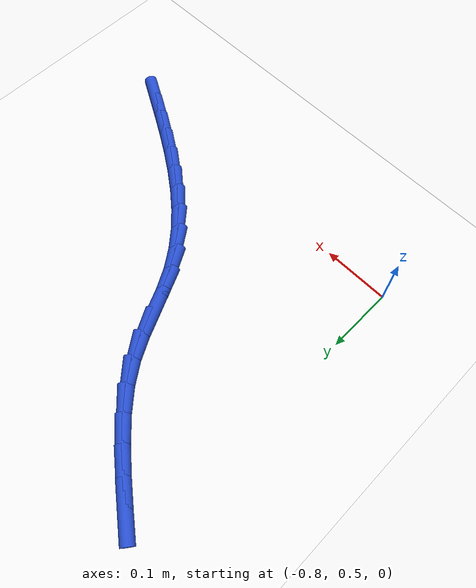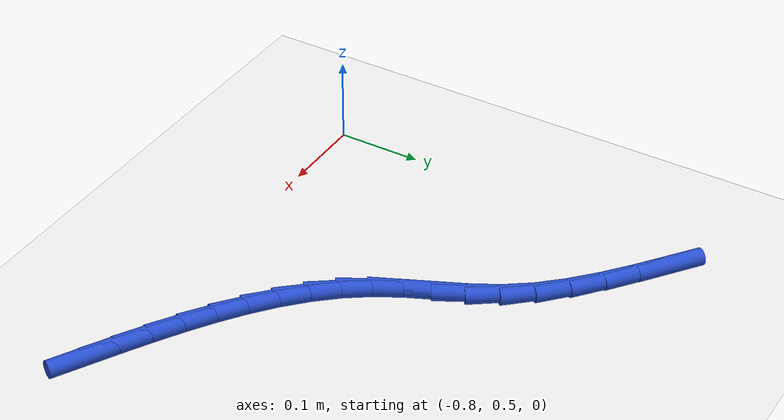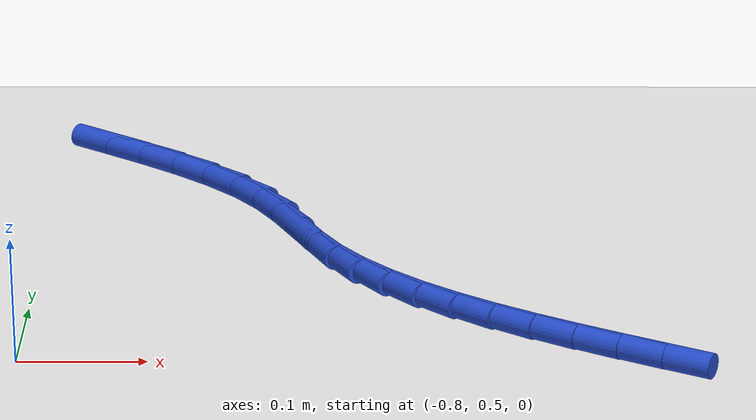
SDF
<sdf version="1.6">
 <world name="default">
  <model name="ground_plane">
   <static>1</static>
   <link name="link">
    <collision name="collision">
     <geometry><plane><normal>0 0 1</normal><size>100 100</size></plane></geometry>
     <surface><friction><ode><mu>100</mu><mu2>50</mu2></ode></friction></surface>
    </collision>
    <visual name="visual">
     <cast_shadows>0</cast_shadows>
     <geometry><plane><normal>0 0 1</normal><size>100 100</size></plane></geometry>
     <material>
      <script><uri>file://media/materials/scripts/gazebo.material</uri><name>Gazebo/WhiteGlow</name></script>
     </material>
    </visual>
   </link>
  </model>
  <model name="line">
   <link name="link_18">
    <pose>-0.31032560848760915 0.49029500216168387 0.01 0 1.57 -0.5091046381326408</pose>
    <collision name="collision">
     <geometry><cylinder><radius>0.01</radius><length>0.08</length></cylinder></geometry>
    </collision>
    <visual name="visual">
     <material>
      <script><name>Gazebo/Blue</name><uri>file://media/materials/scripts/gazebo.material</uri></script>
     </material>
     <geometry><cylinder><radius>0.01</radius><length>0.08</length></cylinder></geometry>
    </visual>
   </link>
   <link name="link_19">
    <pose>-0.3429527251360547 0.5085069300871311 0.01 0 1.57 -0.522336389650863</pose>
    <collision name="collision">
     <geometry><cylinder><radius>0.01</radius><length>0.08</length></cylinder></geometry>
    </collision>
    <visual name="visual">
     <material>
      <script><name>Gazebo/Blue</name><uri>file://media/materials/scripts/gazebo.material</uri></script>
     </material>
     <geometry><cylinder><radius>0.01</radius><length>0.08</length></cylinder></geometry>
    </visual>
   </link>
   <link name="link_20">
    <pose>-0.37517970404151657 0.5270589806637608 0.01 0 1.57 -0.5461047270690569</pose>
    <collision name="collision">
     <geometry><cylinder><radius>0.01</radius><length>0.08</length></cylinder></geometry>
    </collision>
    <visual name="visual">
     <material>
      <script><name>Gazebo/Blue</name><uri>file://media/materials/scripts/gazebo.material</uri></script>
     </material>
     <geometry><cylinder><radius>0.01</radius><length>0.08</length></cylinder></geometry>
    </visual>
   </link>
   <link name="link_21">
    <pose>-0.4066532832284995 0.5461873145926399 0.01 0 1.57 -0.5810437528685014</pose>
    <collision name="collision">
     <geometry><cylinder><radius>0.01</radius><length>0.08</length></cylinder></geometry>
    </collision>
    <visual name="visual">
     <material>
      <script><name>Gazebo/Blue</name><uri>file://media/materials/scripts/gazebo.material</uri></script>
     </material>
     <geometry><cylinder><radius>0.01</radius><length>0.08</length></cylinder></geometry>
    </visual>
   </link>
   <link name="link_22">
    <pose>-0.43702020072150877 0.5661280925748349 0.01 0 1.57 -0.6280291603514226</pose>
    <collision name="collision">
     <geometry><cylinder><radius>0.01</radius><length>0.08</length></cylinder></geometry>
    </collision>
    <visual name="visual">
     <material>
      <script><name>Gazebo/Blue</name><uri>file://media/materials/scripts/gazebo.material</uri></script>
     </material>
     <geometry><cylinder><radius>0.01</radius><length>0.08</length></cylinder></geometry>
    </visual>
   </link>
   <link name="link_23">
    <pose>-0.4659271945450489 0.5871174753114121 0.01 0 1.57 -0.6880792725380012</pose>
    <collision name="collision">
     <geometry><cylinder><radius>0.01</radius><length>0.08</length></cylinder></geometry>
    </collision>
    <visual name="visual">
     <material>
      <script><name>Gazebo/Blue</name><uri>file://media/materials/scripts/gazebo.material</uri></script>
     </material>
     <geometry><cylinder><radius>0.01</radius><length>0.08</length></cylinder></geometry>
    </visual>
   </link>
   <link name="link_24">
    <pose>-0.49302100272362503 0.6093916235034388 0.01 0 1.57 -0.7621628214494885</pose>
    <collision name="collision">
     <geometry><cylinder><radius>0.01</radius><length>0.08</length></cylinder></geometry>
    </collision>
    <visual name="visual">
     <material>
      <script><name>Gazebo/Blue</name><uri>file://media/materials/scripts/gazebo.material</uri></script>
     </material>
     <geometry><cylinder><radius>0.01</radius><length>0.08</length></cylinder></geometry>
    </visual>
   </link>
   <link name="link_25">
    <pose>-0.517948363281742 0.6331866978519807 0.01 0 1.57 -0.8508699777177273</pose>
    <collision name="collision">
     <geometry><cylinder><radius>0.01</radius><length>0.08</length></cylinder></geometry>
    </collision>
    <visual name="visual">
     <material>
      <script><name>Gazebo/Blue</name><uri>file://media/materials/scripts/gazebo.material</uri></script>
     </material>
     <geometry><cylinder><radius>0.01</radius><length>0.08</length></cylinder></geometry>
    </visual>
   </link>
   <link name="link_26">
    <pose>-0.5403560142439046 0.6587388590581049 0.01 0 1.57 -0.9539351848461627</pose>
    <collision name="collision">
     <geometry><cylinder><radius>0.01</radius><length>0.08</length></cylinder></geometry>
    </collision>
    <visual name="visual">
     <material>
      <script><name>Gazebo/Blue</name><uri>file://media/materials/scripts/gazebo.material</uri></script>
     </material>
     <geometry><cylinder><radius>0.01</radius><length>0.08</length></cylinder></geometry>
    </visual>
   </link>
   <link name="link_27">
    <pose>-0.559890693634618 0.686284267822878 0.01 0 1.57 -1.0650247604263254</pose>
    <collision name="collision">
     <geometry><cylinder><radius>0.01</radius><length>0.08</length></cylinder></geometry>
    </collision>
    <visual name="visual">
     <material>
      <script><name>Gazebo/Blue</name><uri>file://media/materials/scripts/gazebo.material</uri></script>
     </material>
     <geometry><cylinder><radius>0.01</radius><length>0.08</length></cylinder></geometry>
    </visual>
   </link>
   <link name="link_28">
    <pose>-0.5763384373440941 0.7159829666899207 0.01 0 1.57 -1.1340277420790987</pose>
    <collision name="collision">
     <geometry><cylinder><radius>0.01</radius><length>0.08</length></cylinder></geometry>
    </collision>
    <visual name="visual">
     <material>
      <script><name>Gazebo/Blue</name><uri>file://media/materials/scripts/gazebo.material</uri></script>
     </material>
     <geometry><cylinder><radius>0.01</radius><length>0.08</length></cylinder></geometry>
    </visual>
   </link>
   <link name="link_29">
    <pose>-0.5909175316045487 0.747212356943557 0.01 0 1.57 -1.1344712018497798</pose>
    <collision name="collision">
     <geometry><cylinder><radius>0.01</radius><length>0.08</length></cylinder></geometry>
    </collision>
    <visual name="visual">
     <material>
      <script><name>Gazebo/Blue</name><uri>file://media/materials/scripts/gazebo.material</uri></script>
     </material>
     <geometry><cylinder><radius>0.01</radius><length>0.08</length></cylinder></geometry>
    </visual>
   </link>
   <link name="link_30">
    <pose>-0.6056885783829699 0.7788895634568915 0.01 0 1.57 -1.0688330388672136</pose>
    <collision name="collision">
     <geometry><cylinder><radius>0.01</radius><length>0.08</length></cylinder></geometry>
    </collision>
    <visual name="visual">
     <material>
      <script><name>Gazebo/Blue</name><uri>file://media/materials/scripts/gazebo.material</uri></script>
     </material>
     <geometry><cylinder><radius>0.01</radius><length>0.08</length></cylinder></geometry>
    </visual>
   </link>
   <link name="link_31">
    <pose>-0.6227229647555037 0.8099258176700388 0.01 0 1.57 -0.9468083116000312</pose>
    <collision name="collision">
     <geometry><cylinder><radius>0.01</radius><length>0.08</length></cylinder></geometry>
    </collision>
    <visual name="visual">
     <material>
      <script><name>Gazebo/Blue</name><uri>file://media/materials/scripts/gazebo.material</uri></script>
     </material>
     <geometry><cylinder><radius>0.01</radius><length>0.08</length></cylinder></geometry>
    </visual>
   </link>
   <link name="link_32">
    <pose>-0.6438899885591162 0.8393266342364513 0.01 0 1.57 -0.8292757306958182</pose>
    <collision name="collision">
     <geometry><cylinder><radius>0.01</radius><length>0.08</length></cylinder></geometry>
    </collision>
    <visual name="visual">
     <material>
      <script><name>Gazebo/Blue</name><uri>file://media/materials/scripts/gazebo.material</uri></script>
     </material>
     <geometry><cylinder><radius>0.01</radius><length>0.08</length></cylinder></geometry>
    </visual>
   </link>
   <link name="link_33">
    <pose>-0.6692023024793812 0.8669637316292895 0.01 0 1.57 -0.7440916666252301</pose>
    <collision name="collision">
     <geometry><cylinder><radius>0.01</radius><length>0.08</length></cylinder></geometry>
    </collision>
    <visual name="visual">
     <material>
      <script><name>Gazebo/Blue</name><uri>file://media/materials/scripts/gazebo.material</uri></script>
     </material>
     <geometry><cylinder><radius>0.01</radius><length>0.08</length></cylinder></geometry>
    </visual>
   </link>
   <link name="link_34">
    <pose>-0.6976735183635517 0.893174923304674 0.01 0 1.57 -0.6869666223439104</pose>
    <collision name="collision">
     <geometry><cylinder><radius>0.01</radius><length>0.08</length></cylinder></geometry>
    </collision>
    <visual name="visual">
     <material>
      <script><name>Gazebo/Blue</name><uri>file://media/materials/scripts/gazebo.material</uri></script>
     </material>
     <geometry><cylinder><radius>0.01</radius><length>0.08</length></cylinder></geometry>
    </visual>
   </link>
   <link name="link_35">
    <pose>-0.7283076159622943 0.9183025165008822 0.01 0 1.57 -0.6541929618392293</pose>
    <collision name="collision">
     <geometry><cylinder><radius>0.01</radius><length>0.08</length></cylinder></geometry>
    </collision>
    <visual name="visual">
     <material>
      <script><name>Gazebo/Blue</name><uri>file://media/materials/scripts/gazebo.material</uri></script>
     </material>
     <geometry><cylinder><radius>0.01</radius><length>0.08</length></cylinder></geometry>
    </visual>
   </link>
   <link name="link_36">
    <pose>-0.7601085750262758 0.9426888184561922 0.01 0 1.57 -0.6436705914752291</pose>
    <collision name="collision">
     <geometry><cylinder><radius>0.01</radius><length>0.08</length></cylinder></geometry>
    </collision>
    <visual name="visual">
     <material>
      <script><name>Gazebo/Blue</name><uri>file://media/materials/scripts/gazebo.material</uri></script>
     </material>
     <geometry><cylinder><radius>0.01</radius><length>0.08</length></cylinder></geometry>
    </visual>
   </link>
  </model>
 </world>
</sdf>
